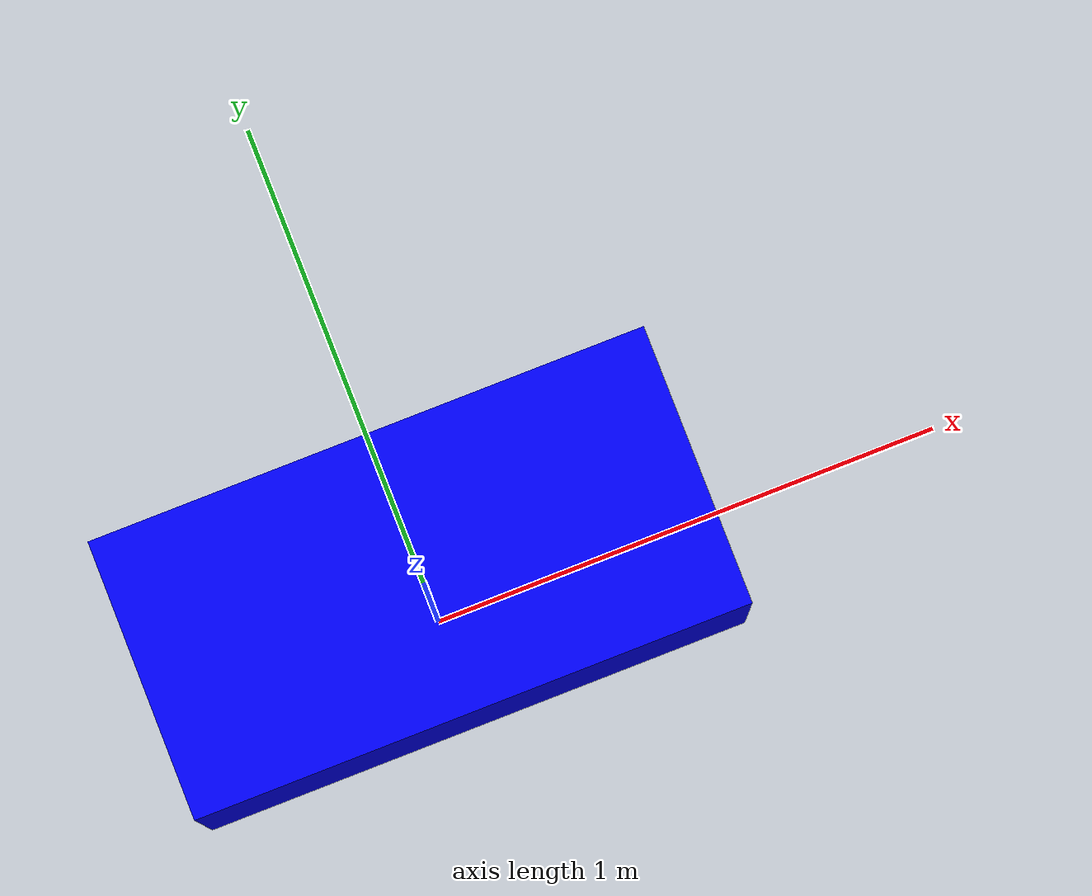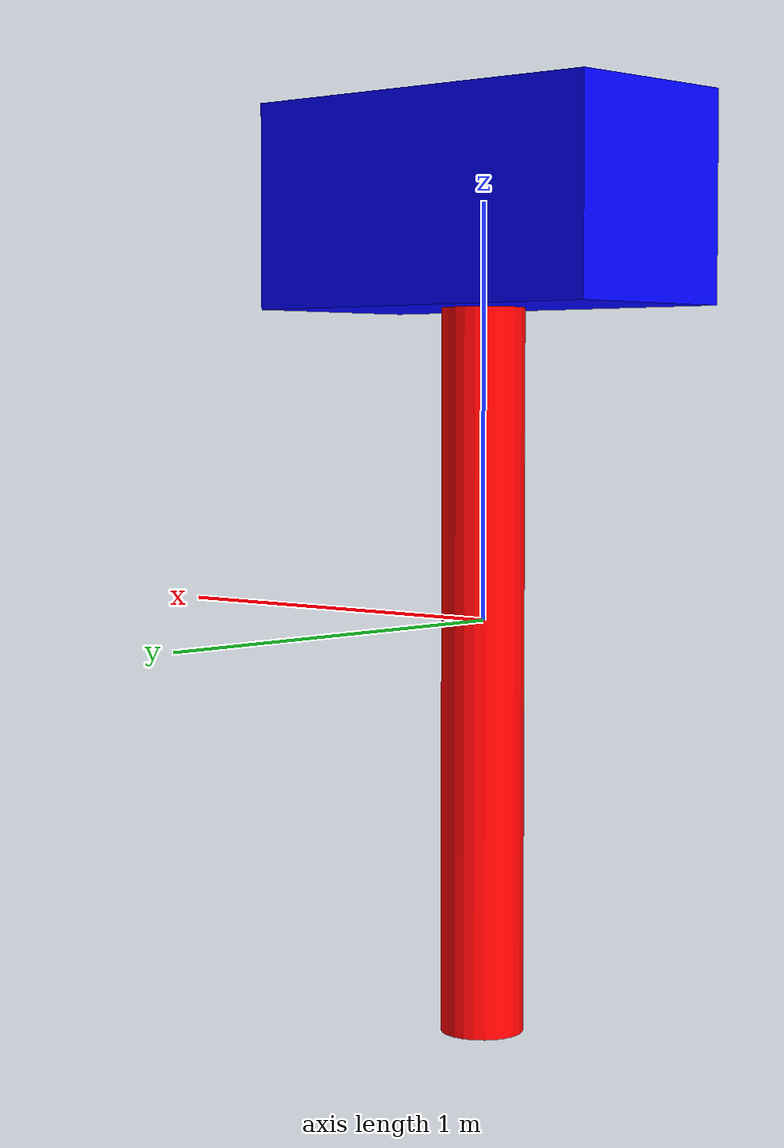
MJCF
<mujoco>
  <option gravity="0 0 -9.81" />
  <worldbody>
    <body name="object_1" pos="0 0 0">
      <geom type="cylinder" size="0.1 1" density="5" rgba="1 0 0 1" />
      <joint name="object_1_joint" type="hinge" axis="0 0 1" />
    </body>
    <body name="object_2" pos="0 0 1">
      <geom type="box" size="0.5 0.25 0.25" density="2" rgba="0 0 1 1" />
      <joint name="object_2_joint" type="free" />
    </body>
    <body name="object_3" pos="0 0 -10">
      <geom type="plane" size="30 30 0.1" rgba="0.7 0.7 0.7 1" friction="0.5 0.5 0.5" />
    </body>
  </worldbody>
</mujoco>
